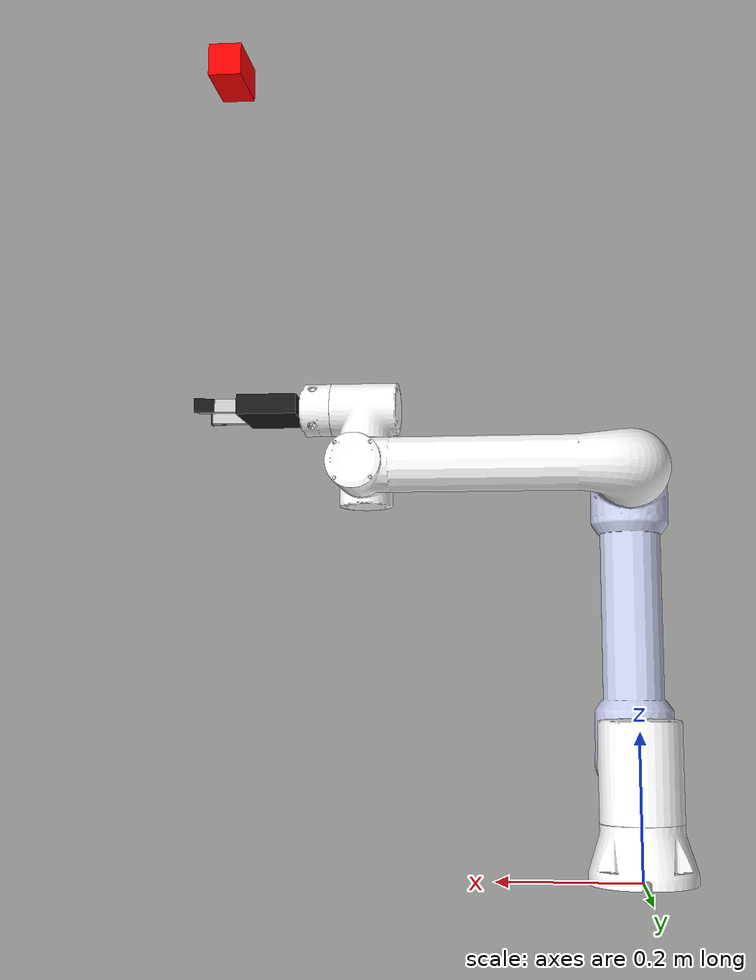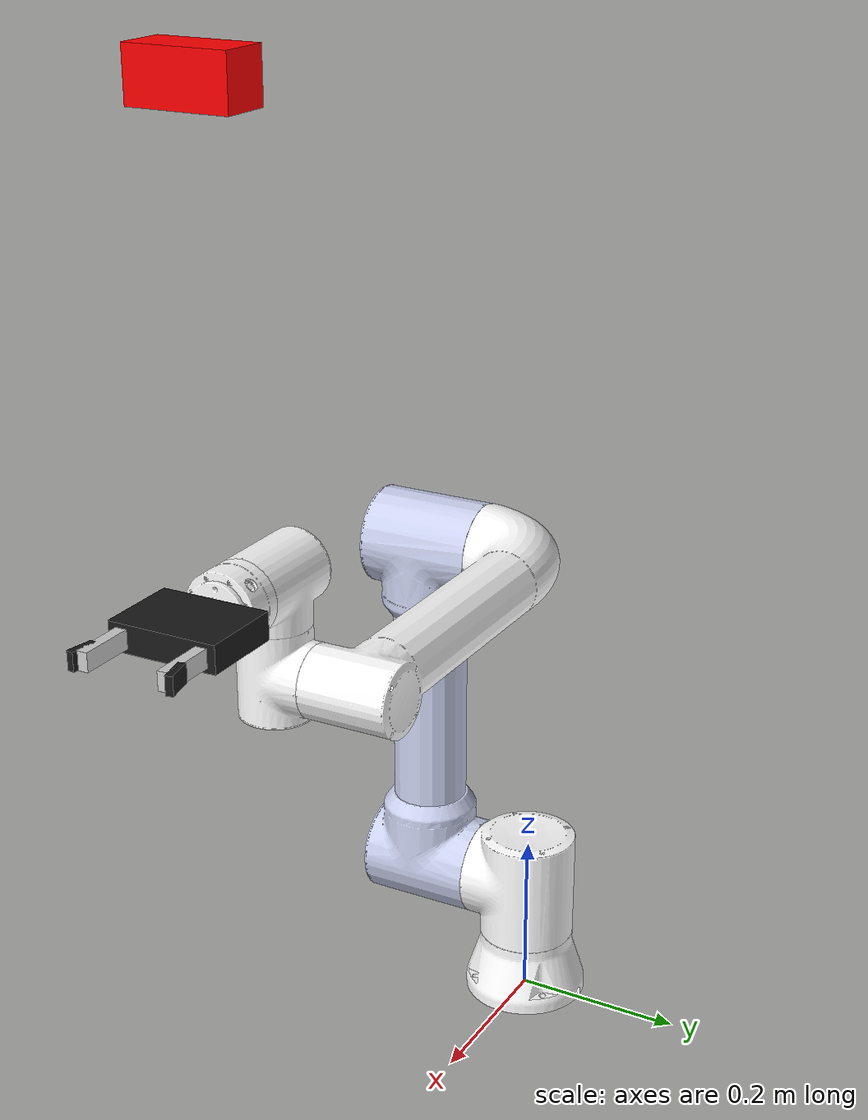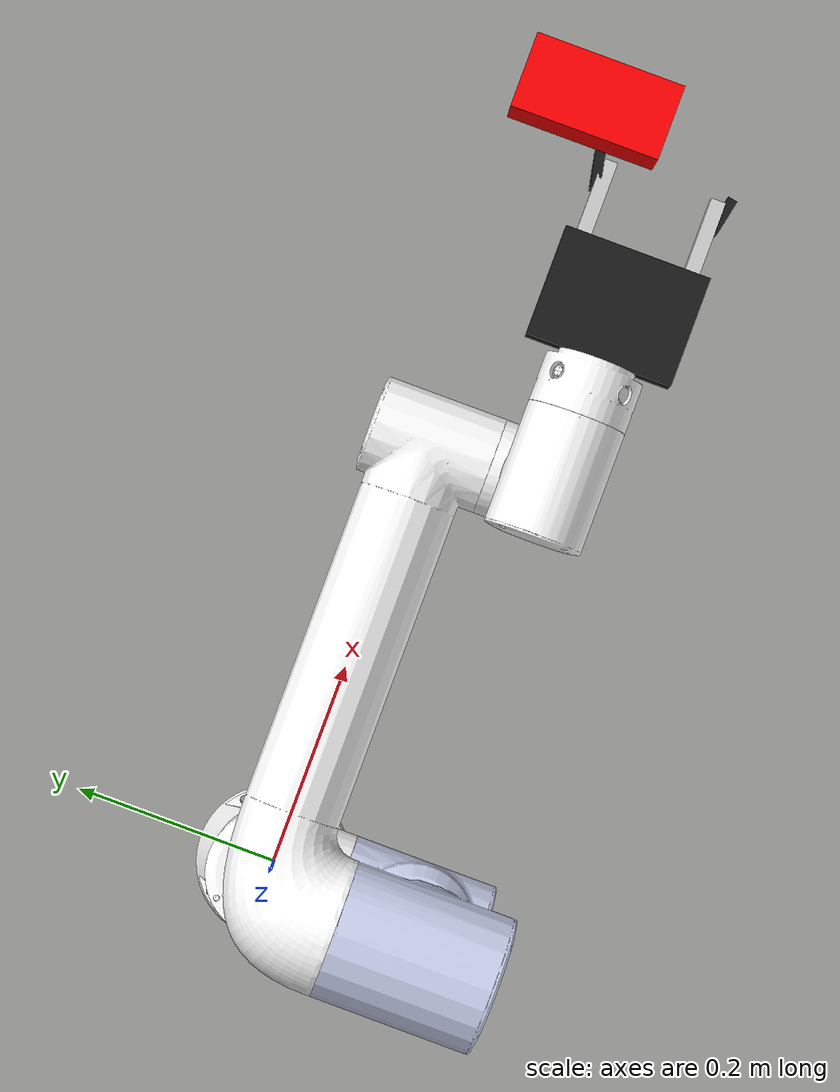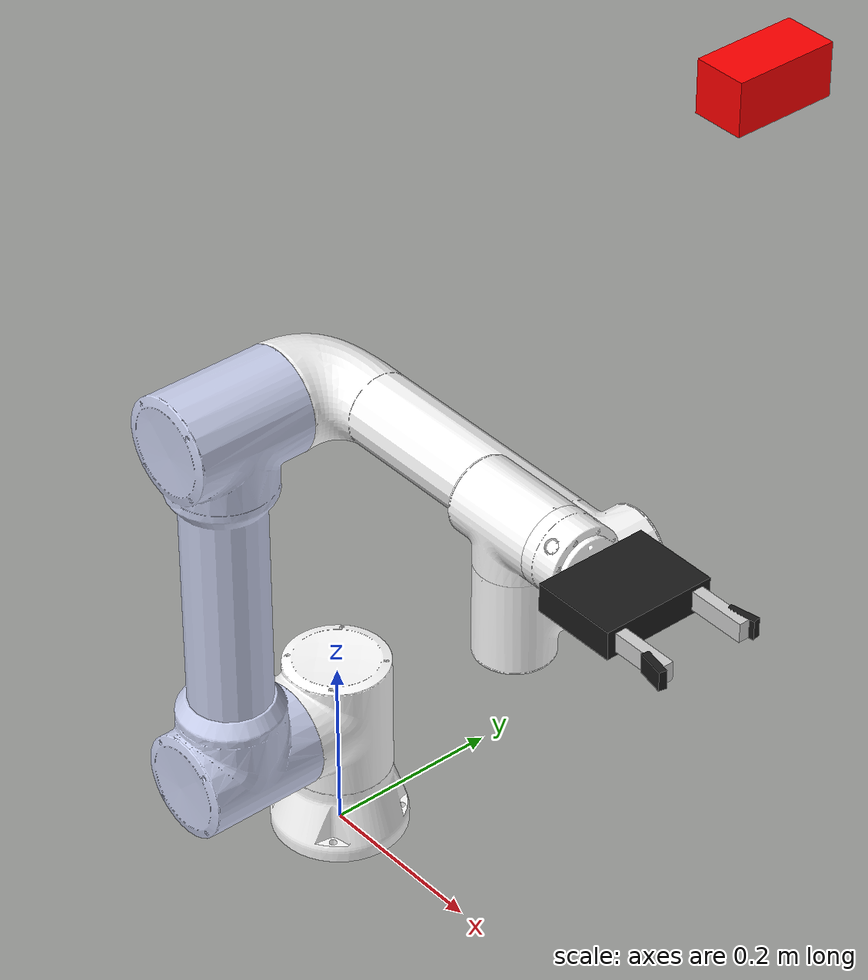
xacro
<?xml version="1.0"?>
<robot xmlns:xacro="http://www.ros.org/wiki/xacro" name="fr5">

  <xacro:include filename="$(find fr5)/urdf/camera.xacro" />
  <xacro:include filename="$(find fr5)/urdf/simple_gripper.xacro" />

  <xacro:property name="mesh_path" value="package://fr5/meshes/visual/" />

  <material name="white"><color rgba="1 1 1 1" /></material>
  <material name="light_blue"><color rgba="0.792 0.819 0.933 1" /></material>
  <material name="black"><color rgba="0.1 0.1 0.1 1"/></material>
  <material name="silver"><color rgba="0.8 0.8 0.8 1"/></material>

  <link name="world"/>
  <joint name="world_joint" type="fixed">
    <origin xyz="0 0 0" rpy="0 0 0" />
    <parent link="world"/>
    <child link="base_link"/>
  </joint>

  <link name="base_link">
    <inertial>
      <origin xyz="0 0 0.04" rpy="0 0 0" />
      <mass value="4.0" />
      <inertia ixx="0.1" ixy="0" ixz="0" iyy="0.1" iyz="0" izz="0.1" />
    </inertial>
    <visual>
      <origin xyz="0 0 0" rpy="0 0 0" />
      <geometry><mesh filename="${mesh_path}base_link.STL" /></geometry>
      <material name="white"/>
    </visual>
    <collision>
      <origin xyz="0 0 0.025" rpy="0 0 0" />
      <geometry><cylinder radius="0.06" length="0.05"/></geometry>
    </collision>
  </link>

  <link name="link1">
    <inertial>
      <origin xyz="0 0 0" rpy="0 0 0" />
      <mass value="3.0" />
      <inertia ixx="0.05" ixy="0" ixz="0" iyy="0.05" iyz="0" izz="0.05" />
    </inertial>
    <visual>
      <origin xyz="0 0 0" rpy="0 0 0" />
      <geometry><mesh filename="${mesh_path}link1.STL" /></geometry>
      <material name="white"/>
    </visual>
    <collision>
      <origin xyz="0 0 0" rpy="0 0 0" />
      <geometry><cylinder radius="0.05" length="0.12"/></geometry>
    </collision>
  </link>
  <joint name="joint1" type="revolute">
    <origin xyz="0 0 0.152" rpy="0 0 0" />
    <parent link="base_link" /><child link="link1" />
    <axis xyz="0 0 1" />
    <limit lower="-3.14" upper="3.14" effort="1000" velocity="1.0" />
    <dynamics damping="0.5" friction="0.2"/>
  </joint>

  <link name="link2">
    <inertial>
      <origin xyz="0 0.2 0" rpy="0 0 0" />
      <mass value="8.0" />
      <inertia ixx="0.2" ixy="0" ixz="0" iyy="0.2" iyz="0" izz="0.2" />
    </inertial>
    <visual>
      <origin xyz="0 0 0" rpy="0 0 0" />
      <geometry><mesh filename="${mesh_path}link2.STL" /></geometry>
      <material name="light_blue"/>
    </visual>
    <collision>
      <origin xyz="0 0 0" rpy="0 0 0" />
      <geometry><mesh filename="${mesh_path}link2.STL" /></geometry>
    </collision>
  </link>
  <joint name="joint2" type="revolute">
    <origin xyz="0 -0.138 0" rpy="1.5708 0 0" />
    <parent link="link1" /><child link="link2" />
    <axis xyz="0 0 1" />
    <limit lower="-3.14" upper="3.14" effort="1000" velocity="1.0" />
    <dynamics damping="1.0" friction="0.5"/>
  </joint>

  <link name="link3">
    <inertial>
      <origin xyz="0 0.2 0" rpy="0 0 0" />
      <mass value="4.0" />
      <inertia ixx="0.1" ixy="0" ixz="0" iyy="0.1" iyz="0" izz="0.1" />
    </inertial>
    <visual>
      <origin xyz="0 0 0" rpy="0 0 0" />
      <geometry><mesh filename="${mesh_path}link3.STL" /></geometry>
      <material name="white"/>
    </visual>
    <collision>
      <origin xyz="0 0 0" rpy="0 0 0" />
      <geometry><mesh filename="${mesh_path}link3.STL" /></geometry>
    </collision>
  </link>
  <joint name="joint3" type="revolute">
    <origin xyz="0 0.425 -0.1378" rpy="-3.1416 0 0" />
    <parent link="link2" /><child link="link3" />
    <axis xyz="0 0 1" />
    <limit lower="-3.14" upper="3.14" effort="1000" velocity="1.0" />
    <dynamics damping="0.5" friction="0.2"/>
  </joint>

  <link name="link4">
    <inertial>
      <origin xyz="0 0 0" rpy="0 0 0" />
      <mass value="1.5" />
      <inertia ixx="0.05" ixy="0" ixz="0" iyy="0.05" iyz="0" izz="0.05" />
    </inertial>
    <visual>
      <origin xyz="0 0 0" rpy="0 0 0" />
      <geometry><mesh filename="${mesh_path}link4.STL" /></geometry>
      <material name="white"/>
    </visual>
    <collision>
      <origin xyz="0 0 0" rpy="0 0 0" />
      <geometry><mesh filename="${mesh_path}link4.STL" /></geometry>
    </collision>
  </link>
  <joint name="joint4" type="revolute">
    <origin xyz="0.39501 0.00025433 -0.1018" rpy="3.1416 0 0" />
    <parent link="link3" /><child link="link4" />
    <axis xyz="0 0 1" />
    <limit lower="-3.14" upper="3.14" effort="500" velocity="1.0" />
    <dynamics damping="0.3" friction="0.1"/>
  </joint>

  <link name="link5">
    <inertial>
      <origin xyz="0 0 0" rpy="0 0 0" />
      <mass value="1.5" />
      <inertia ixx="0.05" ixy="0" ixz="0" iyy="0.05" iyz="0" izz="0.05" />
    </inertial>
    <visual>
      <origin xyz="0 0 0" rpy="0 0 0" />
      <geometry><mesh filename="${mesh_path}link5.STL" /></geometry>
      <material name="white"/>
    </visual>
    <collision>
      <origin xyz="0 0 0" rpy="0 0 0" />
      <geometry><mesh filename="${mesh_path}link5.STL" /></geometry>
    </collision>
  </link>
  <joint name="joint5" type="revolute">
    <origin xyz="6.5538E-05 0.1018 0" rpy="1.5708 0 0" />
    <parent link="link4" /><child link="link5" />
    <axis xyz="0 0 1" />
    <limit lower="-3.14" upper="3.14" effort="500" velocity="1.0" />
    <dynamics damping="0.3" friction="0.1"/>
  </joint>

  <link name="link6">
    <inertial>
      <origin xyz="0 0 -0.01" rpy="0 0 0" />
      <mass value="0.5" />
      <inertia ixx="0.01" ixy="0" ixz="0" iyy="0.01" iyz="0" izz="0.01" />
    </inertial>
    <visual>
      <origin xyz="0 0 0" rpy="0 0 0" />
      <geometry><mesh filename="${mesh_path}link6.STL" /></geometry>
      <material name="white"/>
    </visual>
    <collision>
      <origin xyz="0 0 0" rpy="0 0 0" />
      <geometry><mesh filename="${mesh_path}link6.STL" /></geometry>
    </collision>
  </link>
  <joint name="joint6" type="revolute">
    <origin xyz="0.0998 0 6.4246E-05" rpy="-1.5708 0 -1.5708" />
    <parent link="link5" /><child link="link6" />
    <axis xyz="0 0 1" />
    <limit lower="-3.14" upper="3.14" effort="500" velocity="1.0" />
    <dynamics damping="0.2" friction="0.1"/>
  </joint>

  <link name="tool0"/>
  <joint name="joint_tool0" type="fixed">
    <origin xyz="0 0 0" rpy="0 0 1.5708" />
    <parent link="link6" />
    <child link="tool0" />
  </joint>

  <xacro:macro name="fr5_ros2_control_joint" params="joint_name">
    <joint name="${joint_name}">
      <command_interface name="position"/>
      <state_interface name="position">
        <param name="initial_value">0.0</param>
      </state_interface>
      <state_interface name="velocity"/>
      <state_interface name="effort"/>
    </joint>
  </xacro:macro>

  <ros2_control name="Fr5System" type="system">
    <hardware>
        <plugin>gazebo_ros2_control/GazeboSystem</plugin>
    </hardware>
    <xacro:fr5_ros2_control_joint joint_name="joint1"/>
    <xacro:fr5_ros2_control_joint joint_name="joint2"/>
    <xacro:fr5_ros2_control_joint joint_name="joint3"/>
    <xacro:fr5_ros2_control_joint joint_name="joint4"/>
    <xacro:fr5_ros2_control_joint joint_name="joint5"/>
    <xacro:fr5_ros2_control_joint joint_name="joint6"/>

    <joint name="left_finger_joint">
      <command_interface name="position"/>
      <state_interface name="position">
        <param name="initial_value">0.0</param>
      </state_interface>
      <state_interface name="velocity"/>
      <state_interface name="effort"/>
    </joint>
    <joint name="right_finger_joint">
      <command_interface name="position"/>
      <state_interface name="position">
        <param name="initial_value">0.0</param>
      </state_interface>
      <state_interface name="velocity"/>
      <state_interface name="effort"/>
    </joint>
  </ros2_control>

  <gazebo>
    <plugin filename="libgazebo_ros2_control.so" name="gazebo_ros2_control">
      <robot_param>robot_description</robot_param>
      <robot_param_node>robot_state_publisher</robot_param_node>
      <parameters>$(find fr5)/config/fr5_controllers.yaml</parameters>
      <update_rate>100</update_rate>
    </plugin>
  </gazebo>

  <gazebo>
    <plugin name="gazebo_grasp_fix" filename="libgazebo_grasp_fix.so">
      <arm>
        <arm_name>fr5_arm</arm_name>
        <palm_link>link6</palm_link>
        <gripper_link>left_finger_link</gripper_link>
        <gripper_link>right_finger_link</gripper_link>
      </arm>
      <forces_angle_tolerance>170</forces_angle_tolerance>
      <update_rate>70</update_rate>
      <grip_count_threshold>2</grip_count_threshold>
      <max_grip_count>3</max_grip_count>
      <release_tolerance>0.005</release_tolerance>
      <disable_collisions_on_attach>false</disable_collisions_on_attach>
      <contact_topic>__default_topic__</contact_topic>
    </plugin>
  </gazebo>

  <xacro:setup_camera parent_link="base_link" xyz="0.6 -0.025 1.2" rpy="0 1.57 -1.57" />
  <xacro:simple_gripper prefix="" parent="tool0" />

</robot>

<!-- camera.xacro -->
<robot xmlns:xacro="http://www.ros.org/wiki/xacro">

  <xacro:macro name="setup_camera" params="parent_link xyz rpy">

    <joint name="camera_joint" type="fixed">
      <origin xyz="${xyz}" rpy="${rpy}"/>
      <parent link="${parent_link}"/>
      <child link="camera_link"/>
    </joint>

    <link name="camera_link">
      <visual>
        <origin xyz="0 0 0" rpy="0 0 0"/>
        <geometry><box size="0.05 0.05 0.1"/></geometry>
        <material name="red"><color rgba="1 0 0 1"/></material>
      </visual>
      <collision>
        <geometry><box size="0.05 0.05 0.1"/></geometry>
      </collision>
      <inertial>
        <mass value="0.1" />
        <inertia ixx="0.001" ixy="0" ixz="0" iyy="0.001" iyz="0" izz="0.001" />
      </inertial>
    </link>

    <gazebo reference="camera_link">
      <material>Gazebo/Red</material>
      <sensor type="camera" name="camera_sensor">
        <update_rate>30.0</update_rate>
        <camera>
          <horizontal_fov>0.8</horizontal_fov>
          <image><width>640</width><height>480</height><format>R8G8B8</format></image>
          <clip><near>0.02</near><far>300</far></clip>
        </camera>
        <plugin name="camera_controller" filename="libgazebo_ros_camera.so">
          <camera_name>narrow_stereo</camera_name>
          <frame_name>camera_link</frame_name>
          <hack_baseline>0.07</hack_baseline>
        </plugin>
      </sensor>
    </gazebo>
  </xacro:macro>
</robot>

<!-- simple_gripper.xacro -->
<robot xmlns:xacro="http://www.ros.org/wiki/xacro">
  <xacro:macro name="simple_gripper" params="prefix parent">

    <joint name="${prefix}gripper_base_joint" type="fixed">
      <origin xyz="0 0 0" rpy="0 0 0"/>
      <parent link="${parent}"/>
      <child link="${prefix}gripper_base_link"/>
    </joint>

    <link name="${prefix}gripper_base_link">
      <visual>
        <origin xyz="0 0 0.045" rpy="0 0 0"/>
        <geometry><box size="0.03 0.12 0.09"/></geometry>
        <material name="black"><color rgba="0.1 0.1 0.1 1"/></material>
      </visual>
      <collision>
        <origin xyz="0 0 0.045" rpy="0 0 0"/>
        <geometry><box size="0.03 0.12 0.09"/></geometry>
      </collision>
      <inertial>
        <mass value="0.2" />
        <origin xyz="0 0 0.02" rpy="0 0 0"/>
        <inertia ixx="0.001" ixy="0" ixz="0" iyy="0.001" iyz="0" izz="0.001" />
      </inertial>
    </link>

    <joint name="${prefix}left_finger_joint" type="prismatic">
      <origin xyz="0 -0.05 0.09" rpy="0 0 0"/>
      <parent link="${prefix}gripper_base_link"/>
      <child link="${prefix}left_finger_link"/>
      <axis xyz="0 1 0"/>
      <limit lower="0.0" upper="0.04" effort="60.0" velocity="0.5"/>
      <dynamics damping="1.0" friction="0.1"/>
    </joint>

    <link name="${prefix}left_finger_link">
      <visual>
        <origin xyz="0 0.005 0.03" rpy="0 0 0"/>
        <geometry><box size="0.02 0.012 0.06"/></geometry>
        <material name="silver"/>
      </visual>
      <visual>
        <origin xyz="0 -0.002 0.05" rpy="0.2 0 0"/>
        <geometry><box size="0.02 0.008 0.03"/></geometry>
        <material name="black"/>
      </visual>
      <collision>
        <origin xyz="0 0.005 0.03" rpy="0 0 0"/>
        <geometry><box size="0.02 0.012 0.06"/></geometry>
      </collision>
      <inertial>
        <mass value="0.05" />
        <inertia ixx="0.0001" ixy="0" ixz="0" iyy="0.0001" iyz="0" izz="0.0001" />
      </inertial>
    </link>

    <joint name="${prefix}right_finger_joint" type="prismatic">
      <origin xyz="0 0.05 0.09" rpy="0 0 0"/>
      <parent link="${prefix}gripper_base_link"/>
      <child link="${prefix}right_finger_link"/>
      <axis xyz="0 -1 0"/>
      <limit lower="0.0" upper="0.04" effort="60.0" velocity="0.5"/>
      <dynamics damping="1.0" friction="0.1"/>
    </joint>

    <link name="${prefix}right_finger_link">
      <visual>
        <origin xyz="0 -0.005 0.03" rpy="0 0 0"/>
        <geometry><box size="0.02 0.012 0.06"/></geometry>
        <material name="silver"/>
      </visual>
      <visual>
        <origin xyz="0 0.002 0.05" rpy="-0.2 0 0"/>
        <geometry><box size="0.02 0.008 0.03"/></geometry>
        <material name="black"/>
      </visual>
      <collision>
        <origin xyz="0 -0.005 0.03" rpy="0 0 0"/>
        <geometry><box size="0.02 0.012 0.06"/></geometry>
      </collision>
      <inertial>
        <mass value="0.05" />
        <inertia ixx="0.0001" ixy="0" ixz="0" iyy="0.0001" iyz="0" izz="0.0001" />
      </inertial>
    </link>

    <gazebo reference="${prefix}left_finger_link">
      <mu1>100000.0</mu1>      <mu2>100000.0</mu2>      <kp>10000.0</kp>         <kd>1000.0</kd>          <minDepth>0.005</minDepth> <maxVel>0.0</maxVel>       <fdir1>0 0 1</fdir1>       </gazebo>

    <gazebo reference="${prefix}right_finger_link">
      <mu1>100000.0</mu1>
      <mu2>100000.0</mu2>
      <kp>10000.0</kp>
      <kd>1000.0</kd>
      <minDepth>0.005</minDepth>
      <maxVel>0.0</maxVel>
      <fdir1>0 0 1</fdir1>
    </gazebo>

  </xacro:macro>
</robot>
